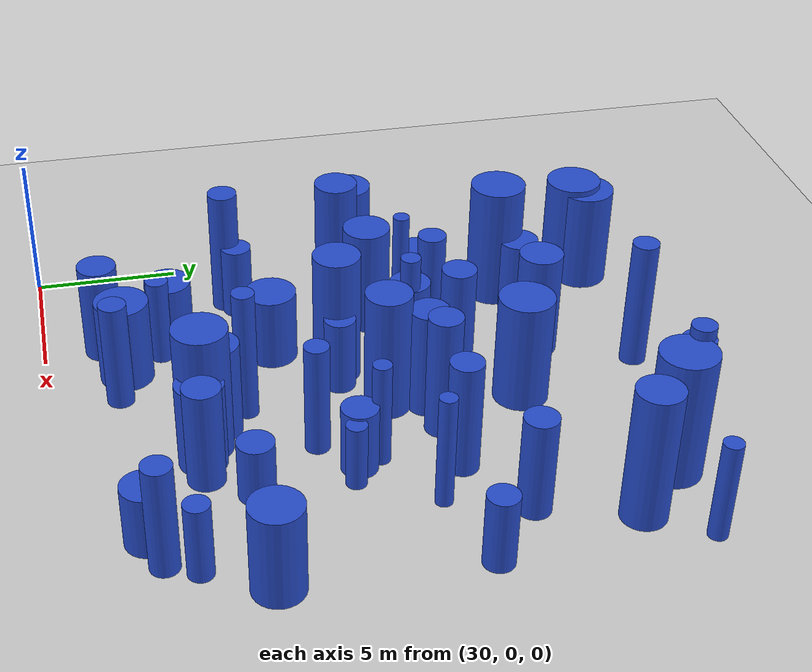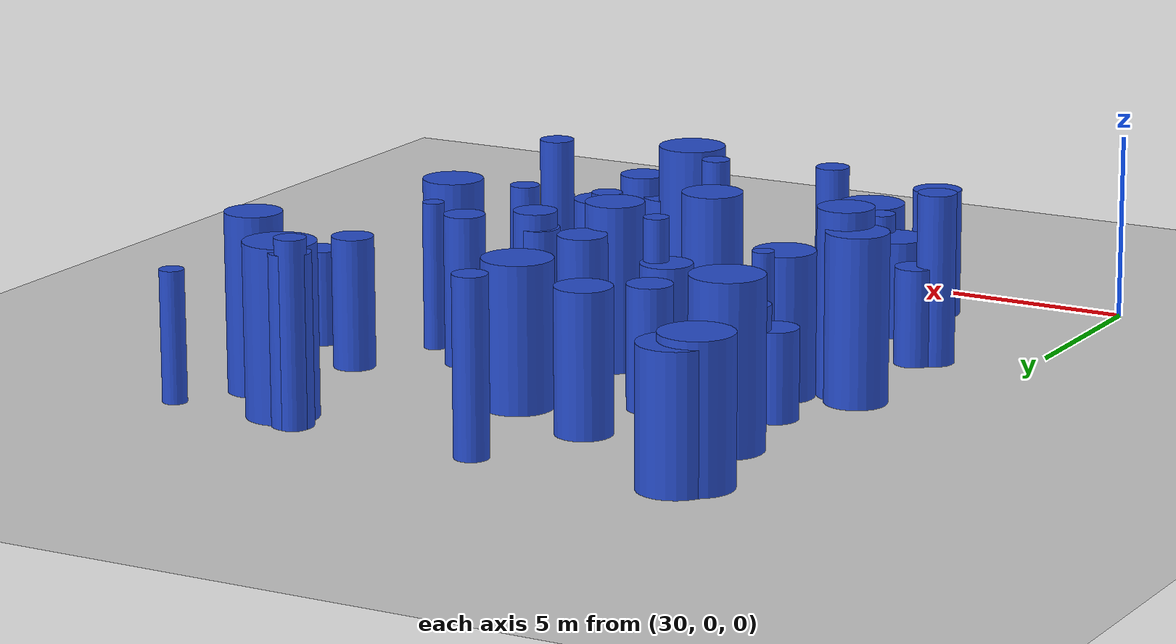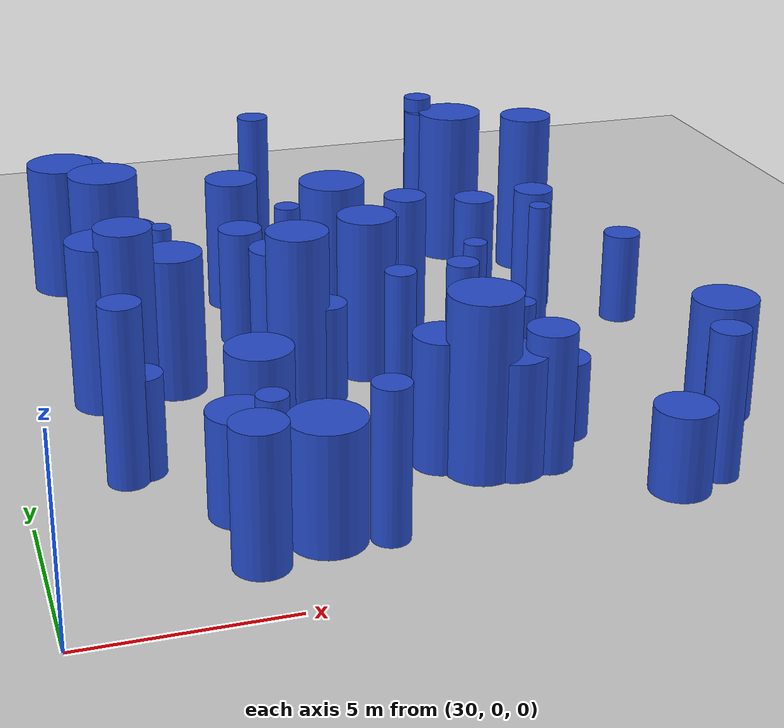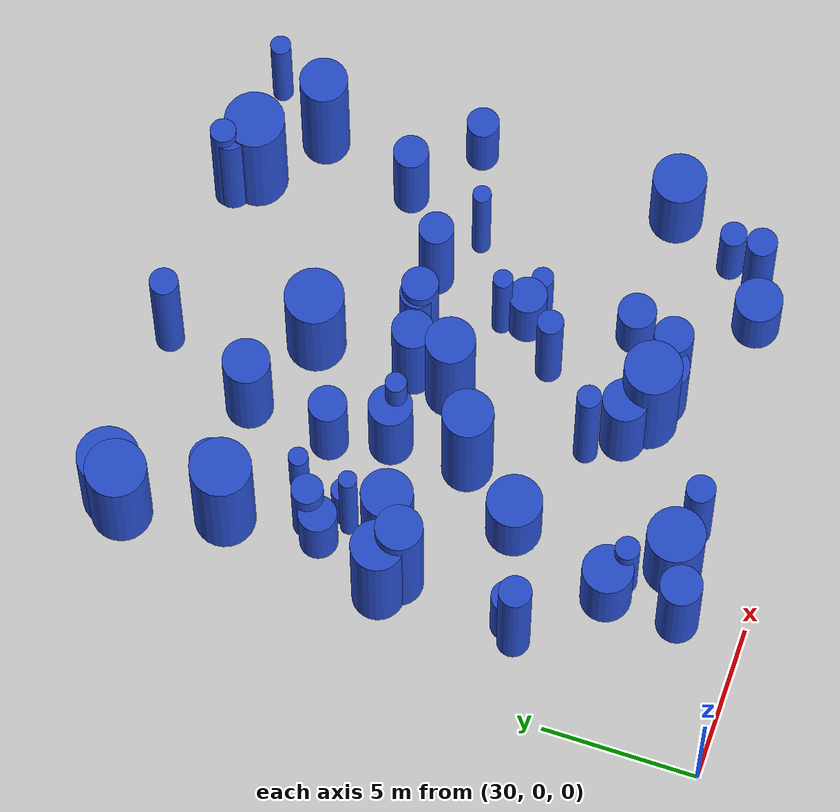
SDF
<sdf version="1.6">
 <world name="default">
  <model name="ground_plane">
   <static>1</static>
   <link name="link">
    <collision name="collision">
     <geometry><plane><normal>0 0 1</normal><size>100 100</size></plane></geometry>
     <surface><friction><ode><mu>100</mu><mu2>50</mu2></ode></friction></surface>
    </collision>
    <visual name="visual">
     <cast_shadows>0</cast_shadows>
     <geometry><plane><normal>0 0 1</normal><size>100 100</size></plane></geometry>
     <material>
      <script><uri>file://media/materials/scripts/gazebo.material</uri><name>Gazebo/Grey</name></script>
     </material>
    </visual>
   </link>
  </model>
  <model name="6">
   <static>0</static>
   <link name="link">
    <inertial>
     <mass>2</mass>
     <inertia><ixx>1.67554</ixx><ixy>0</ixy><ixz>0</ixz><iyy>1.67554</iyy><iyz>0</iyz><izz>0.257363</izz></inertia>
    </inertial>
    <collision name="collision">
     <geometry><cylinder><length>3.04649</length><radius>0.50731</radius></cylinder></geometry>
     <surface><contact><collide_without_contact>1</collide_without_contact></contact></surface>
    </collision>
    <visual name="visual">
     <geometry><cylinder><length>3.04649</length><radius>0.50731</radius></cylinder></geometry>
     <material>
      <script><uri>file://media/materials/scripts/gazebo.material</uri><name>Gazebo/Blue</name></script>
     </material>
    </visual>
    <gravity>0</gravity>
   </link>
   <pose>34.1541 13.9376 1.52325 0 -0 0</pose>
  </model>
  <model name="44">
   <static>0</static>
   <link name="link">
    <inertial>
     <mass>2</mass>
     <inertia><ixx>3.63122</ixx><ixy>0</ixy><ixz>0</ixz><iyy>3.63122</iyy><iyz>0</iyz><izz>0.614122</izz></inertia>
    </inertial>
    <collision name="collision">
     <geometry><cylinder><length>4.46598</length><radius>0.783659</radius></cylinder></geometry>
     <surface><contact><collide_without_contact>1</collide_without_contact></contact></surface>
    </collision>
    <visual name="visual">
     <geometry><cylinder><length>4.46598</length><radius>0.783659</radius></cylinder></geometry>
     <material>
      <script><uri>file://media/materials/scripts/gazebo.material</uri><name>Gazebo/Blue</name></script>
     </material>
    </visual>
    <gravity>0</gravity>
   </link>
   <pose>39.6417 11.1136 2.23299 0 -0 0</pose>
  </model>
  <model name="46">
   <static>0</static>
   <link name="link">
    <inertial>
     <mass>2</mass>
     <inertia>
      <ixx>0.904884</ixx>
      <ixy>0</ixy>
      <ixz>0</ixz>
      <iyy>0.904884</iyy>
      <iyz>0</iyz>
      <izz>0.374443</izz>
     </inertia>
    </inertial>
    <collision name="collision">
     <geometry><cylinder><length>2.07508</length><radius>0.611918</radius></cylinder></geometry>
     <surface><contact><collide_without_contact>1</collide_without_contact></contact></surface>
    </collision>
    <visual name="visual">
     <geometry><cylinder><length>2.07508</length><radius>0.611918</radius></cylinder></geometry>
     <material>
      <script><uri>file://media/materials/scripts/gazebo.material</uri><name>Gazebo/Blue</name></script>
     </material>
    </visual>
    <gravity>0</gravity>
   </link>
   <pose>43.3206 6.1671 1.03754 0 -0 0</pose>
  </model>
  <model name="89">
   <static>0</static>
   <link name="link">
    <inertial>
     <mass>2</mass>
     <inertia><ixx>1.27675</ixx><ixy>0</ixy><ixz>0</ixz><iyy>1.27675</iyy><iyz>0</iyz><izz>0.177285</izz></inertia>
    </inertial>
    <collision name="collision">
     <geometry><cylinder><length>2.66996</length><radius>0.421052</radius></cylinder></geometry>
     <surface><contact><collide_without_contact>1</collide_without_contact></contact></surface>
    </collision>
    <visual name="visual">
     <geometry><cylinder><length>2.66996</length><radius>0.421052</radius></cylinder></geometry>
     <material>
      <script><uri>file://media/materials/scripts/gazebo.material</uri><name>Gazebo/Blue</name></script>
     </material>
    </visual>
    <gravity>0</gravity>
   </link>
   <pose>46.5006 4.01887 1.33498 0 -0 0</pose>
  </model>
  <model name="102">
   <static>0</static>
   <link name="link">
    <inertial>
     <mass>2</mass>
     <inertia><ixx>3.00871</ixx><ixy>0</ixy><ixz>0</ixz><iyy>3.00871</iyy><iyz>0</iyz><izz>0.884047</izz></inertia>
    </inertial>
    <collision name="collision">
     <geometry><cylinder><length>3.9243</length><radius>0.940238</radius></cylinder></geometry>
     <surface><contact><collide_without_contact>1</collide_without_contact></contact></surface>
    </collision>
    <visual name="visual">
     <geometry><cylinder><length>3.9243</length><radius>0.940238</radius></cylinder></geometry>
     <material>
      <script><uri>file://media/materials/scripts/gazebo.material</uri><name>Gazebo/Blue</name></script>
     </material>
    </visual>
    <gravity>0</gravity>
   </link>
   <pose>39.9459 15.6386 1.96215 0 -0 0</pose>
  </model>
  <model name="111">
   <static>0</static>
   <link name="link">
    <inertial>
     <mass>2</mass>
     <inertia><ixx>2.81372</ixx><ixy>0</ixy><ixz>0</ixz><iyy>2.81372</iyy><iyz>0</iyz><izz>0.674403</izz></inertia>
    </inertial>
    <collision name="collision">
     <geometry><cylinder><length>3.85475</length><radius>0.821221</radius></cylinder></geometry>
     <surface><contact><collide_without_contact>1</collide_without_contact></contact></surface>
    </collision>
    <visual name="visual">
     <geometry><cylinder><length>3.85475</length><radius>0.821221</radius></cylinder></geometry>
     <material>
      <script><uri>file://media/materials/scripts/gazebo.material</uri><name>Gazebo/Blue</name></script>
     </material>
    </visual>
    <gravity>0</gravity>
   </link>
   <pose>34.4897 11.469 1.92738 0 -0 0</pose>
  </model>
  <model name="121">
   <static>0</static>
   <link name="link">
    <inertial>
     <mass>2</mass>
     <inertia><ixx>2.96479</ixx><ixy>0</ixy><ixz>0</ixz><iyy>2.96479</iyy><iyz>0</iyz><izz>0.93667</izz></inertia>
    </inertial>
    <collision name="collision">
     <geometry><cylinder><length>3.87023</length><radius>0.967817</radius></cylinder></geometry>
     <surface><contact><collide_without_contact>1</collide_without_contact></contact></surface>
    </collision>
    <visual name="visual">
     <geometry><cylinder><length>3.87023</length><radius>0.967817</radius></cylinder></geometry>
     <material>
      <script><uri>file://media/materials/scripts/gazebo.material</uri><name>Gazebo/Blue</name></script>
     </material>
    </visual>
    <gravity>0</gravity>
   </link>
   <pose>32.6949 19.6013 1.93512 0 -0 0</pose>
  </model>
  <model name="123">
   <static>0</static>
   <link name="link">
    <inertial>
     <mass>2</mass>
     <inertia><ixx>3.52291</ixx><ixy>0</ixy><ixz>0</ixz><iyy>3.52291</iyy><iyz>0</iyz><izz>0.302522</izz></inertia>
    </inertial>
    <collision name="collision">
     <geometry><cylinder><length>4.49777</length><radius>0.55002</radius></cylinder></geometry>
     <surface><contact><collide_without_contact>1</collide_without_contact></contact></surface>
    </collision>
    <visual name="visual">
     <geometry><cylinder><length>4.49777</length><radius>0.55002</radius></cylinder></geometry>
     <material>
      <script><uri>file://media/materials/scripts/gazebo.material</uri><name>Gazebo/Blue</name></script>
     </material>
    </visual>
    <gravity>0</gravity>
   </link>
   <pose>44.066 19.802 2.24888 0 -0 0</pose>
  </model>
  <model name="136">
   <static>0</static>
   <link name="link">
    <inertial>
     <mass>2</mass>
     <inertia><ixx>1.13934</ixx><ixy>0</ixy><ixz>0</ixz><iyy>1.13934</iyy><iyz>0</iyz><izz>0.372136</izz></inertia>
    </inertial>
    <collision name="collision">
     <geometry><cylinder><length>2.39158</length><radius>0.610029</radius></cylinder></geometry>
     <surface><contact><collide_without_contact>1</collide_without_contact></contact></surface>
    </collision>
    <visual name="visual">
     <geometry><cylinder><length>2.39158</length><radius>0.610029</radius></cylinder></geometry>
     <material>
      <script><uri>file://media/materials/scripts/gazebo.material</uri><name>Gazebo/Blue</name></script>
     </material>
    </visual>
    <gravity>0</gravity>
   </link>
   <pose>33.7146 13.4707 1.19579 0 -0 0</pose>
  </model>
  <model name="142">
   <static>0</static>
   <link name="link">
    <inertial>
     <mass>2</mass>
     <inertia><ixx>3.72978</ixx><ixy>0</ixy><ixz>0</ixz><iyy>3.72978</iyy><iyz>0</iyz><izz>0.206879</izz></inertia>
    </inertial>
    <collision name="collision">
     <geometry><cylinder><length>4.66455</length><radius>0.454839</radius></cylinder></geometry>
     <surface><contact><collide_without_contact>1</collide_without_contact></contact></surface>
    </collision>
    <visual name="visual">
     <geometry><cylinder><length>4.66455</length><radius>0.454839</radius></cylinder></geometry>
     <material>
      <script><uri>file://media/materials/scripts/gazebo.material</uri><name>Gazebo/Blue</name></script>
     </material>
    </visual>
    <gravity>0</gravity>
   </link>
   <pose>38.6761 20.082 2.33228 0 -0 0</pose>
  </model>
  <model name="147">
   <static>0</static>
   <link name="link">
    <inertial>
     <mass>2</mass>
     <inertia><ixx>2.71197</ixx><ixy>0</ixy><ixz>0</ixz><iyy>2.71197</iyy><iyz>0</iyz><izz>0.566044</izz></inertia>
    </inertial>
    <collision name="collision">
     <geometry><cylinder><length>3.81755</length><radius>0.752359</radius></cylinder></geometry>
     <surface><contact><collide_without_contact>1</collide_without_contact></contact></surface>
    </collision>
    <visual name="visual">
     <geometry><cylinder><length>3.81755</length><radius>0.752359</radius></cylinder></geometry>
     <material>
      <script><uri>file://media/materials/scripts/gazebo.material</uri><name>Gazebo/Blue</name></script>
     </material>
    </visual>
    <gravity>0</gravity>
   </link>
   <pose>37.2852 16.9555 1.90878 0 -0 0</pose>
  </model>
  <model name="150">
   <static>0</static>
   <link name="link">
    <inertial>
     <mass>2</mass>
     <inertia><ixx>1.24083</ixx><ixy>0</ixy><ixz>0</ixz><iyy>1.24083</iyy><iyz>0</iyz><izz>0.266175</izz></inertia>
    </inertial>
    <collision name="collision">
     <geometry><cylinder><length>2.57807</length><radius>0.515922</radius></cylinder></geometry>
     <surface><contact><collide_without_contact>1</collide_without_contact></contact></surface>
    </collision>
    <visual name="visual">
     <geometry><cylinder><length>2.57807</length><radius>0.515922</radius></cylinder></geometry>
     <material>
      <script><uri>file://media/materials/scripts/gazebo.material</uri><name>Gazebo/Blue</name></script>
     </material>
    </visual>
    <gravity>0</gravity>
   </link>
   <pose>47.7472 12.6653 1.28904 0 -0 0</pose>
  </model>
  <model name="152">
   <static>0</static>
   <link name="link">
    <inertial>
     <mass>2</mass>
     <inertia><ixx>2.66705</ixx><ixy>0</ixy><ixz>0</ixz><iyy>2.66705</iyy><iyz>0</iyz><izz>0.437548</izz></inertia>
    </inertial>
    <collision name="collision">
     <geometry><cylinder><length>3.83271</length><radius>0.661474</radius></cylinder></geometry>
     <surface><contact><collide_without_contact>1</collide_without_contact></contact></surface>
    </collision>
    <visual name="visual">
     <geometry><cylinder><length>3.83271</length><radius>0.661474</radius></cylinder></geometry>
     <material>
      <script><uri>file://media/materials/scripts/gazebo.material</uri><name>Gazebo/Blue</name></script>
     </material>
    </visual>
    <gravity>0</gravity>
   </link>
   <pose>39.8846 12.4135 1.91635 0 -0 0</pose>
  </model>
  <model name="153">
   <static>0</static>
   <link name="link">
    <inertial>
     <mass>2</mass>
     <inertia><ixx>2.11623</ixx><ixy>0</ixy><ixz>0</ixz><iyy>2.11623</iyy><iyz>0</iyz><izz>0.485566</izz></inertia>
    </inertial>
    <collision name="collision">
     <geometry><cylinder><length>3.35272</length><radius>0.696826</radius></cylinder></geometry>
     <surface><contact><collide_without_contact>1</collide_without_contact></contact></surface>
    </collision>
    <visual name="visual">
     <geometry><cylinder><length>3.35272</length><radius>0.696826</radius></cylinder></geometry>
     <material>
      <script><uri>file://media/materials/scripts/gazebo.material</uri><name>Gazebo/Blue</name></script>
     </material>
    </visual>
    <gravity>0</gravity>
   </link>
   <pose>37.4483 12.3398 1.67636 0 -0 0</pose>
  </model>
  <model name="166">
   <static>0</static>
   <link name="link">
    <inertial>
     <mass>2</mass>
     <inertia>
      <ixx>0.802403</ixx>
      <ixy>0</ixy>
      <ixz>0</ixz>
      <iyy>0.802403</iyy>
      <iyz>0</iyz>
      <izz>0.153345</izz>
     </inertia>
    </inertial>
    <collision name="collision">
     <geometry><cylinder><length>2.08672</length><radius>0.391593</radius></cylinder></geometry>
     <surface><contact><collide_without_contact>1</collide_without_contact></contact></surface>
    </collision>
    <visual name="visual">
     <geometry><cylinder><length>2.08672</length><radius>0.391593</radius></cylinder></geometry>
     <material>
      <script><uri>file://media/materials/scripts/gazebo.material</uri><name>Gazebo/Blue</name></script>
     </material>
    </visual>
    <gravity>0</gravity>
   </link>
   <pose>34.8114 12.9983 1.04336 0 -0 0</pose>
  </model>
  <model name="171">
   <static>0</static>
   <link name="link">
    <inertial>
     <mass>2</mass>
     <inertia><ixx>3.80906</ixx><ixy>0</ixy><ixz>0</ixz><iyy>3.80906</iyy><iyz>0</iyz><izz>0.938182</izz></inertia>
    </inertial>
    <collision name="collision">
     <geometry><cylinder><length>4.47658</length><radius>0.968598</radius></cylinder></geometry>
     <surface><contact><collide_without_contact>1</collide_without_contact></contact></surface>
    </collision>
    <visual name="visual">
     <geometry><cylinder><length>4.47658</length><radius>0.968598</radius></cylinder></geometry>
     <material>
      <script><uri>file://media/materials/scripts/gazebo.material</uri><name>Gazebo/Blue</name></script>
     </material>
    </visual>
    <gravity>0</gravity>
   </link>
   <pose>33.5153 16.4732 2.23829 0 -0 0</pose>
  </model>
  <model name="177">
   <static>0</static>
   <link name="link">
    <inertial>
     <mass>2</mass>
     <inertia><ixx>1.29724</ixx><ixy>0</ixy><ixz>0</ixz><iyy>1.29724</iyy><iyz>0</iyz><izz>0.287893</izz></inertia>
    </inertial>
    <collision name="collision">
     <geometry><cylinder><length>2.63054</length><radius>0.536557</radius></cylinder></geometry>
     <surface><contact><collide_without_contact>1</collide_without_contact></contact></surface>
    </collision>
    <visual name="visual">
     <geometry><cylinder><length>2.63054</length><radius>0.536557</radius></cylinder></geometry>
     <material>
      <script><uri>file://media/materials/scripts/gazebo.material</uri><name>Gazebo/Blue</name></script>
     </material>
    </visual>
    <gravity>0</gravity>
   </link>
   <pose>32.8916 7.05394 1.31527 0 -0 0</pose>
  </model>
  <model name="180">
   <static>0</static>
   <link name="link">
    <inertial>
     <mass>2</mass>
     <inertia><ixx>3.44735</ixx><ixy>0</ixy><ixz>0</ixz><iyy>3.44735</iyy><iyz>0</iyz><izz>0.113907</izz></inertia>
    </inertial>
    <collision name="collision">
     <geometry><cylinder><length>4.51025</length><radius>0.337501</radius></cylinder></geometry>
     <surface><contact><collide_without_contact>1</collide_without_contact></contact></surface>
    </collision>
    <visual name="visual">
     <geometry><cylinder><length>4.51025</length><radius>0.337501</radius></cylinder></geometry>
     <material>
      <script><uri>file://media/materials/scripts/gazebo.material</uri><name>Gazebo/Blue</name></script>
     </material>
    </visual>
    <gravity>0</gravity>
   </link>
   <pose>37.7872 12.2615 2.25513 0 -0 0</pose>
  </model>
  <model name="184">
   <static>0</static>
   <link name="link">
    <inertial>
     <mass>2</mass>
     <inertia><ixx>2.8983</ixx><ixy>0</ixy><ixz>0</ixz><iyy>2.8983</iyy><iyz>0</iyz><izz>0.305029</izz></inertia>
    </inertial>
    <collision name="collision">
     <geometry><cylinder><length>4.05891</length><radius>0.552294</radius></cylinder></geometry>
     <surface><contact><collide_without_contact>1</collide_without_contact></contact></surface>
    </collision>
    <visual name="visual">
     <geometry><cylinder><length>4.05891</length><radius>0.552294</radius></cylinder></geometry>
     <material>
      <script><uri>file://media/materials/scripts/gazebo.material</uri><name>Gazebo/Blue</name></script>
     </material>
    </visual>
    <gravity>0</gravity>
   </link>
   <pose>43.2383 12.7435 2.02945 0 -0 0</pose>
  </model>
  <model name="191">
   <static>0</static>
   <link name="link">
    <inertial>
     <mass>2</mass>
     <inertia><ixx>4.3988</ixx><ixy>0</ixy><ixz>0</ixz><iyy>4.3988</iyy><iyz>0</iyz><izz>0.551901</izz></inertia>
    </inertial>
    <collision name="collision">
     <geometry><cylinder><length>4.97364</length><radius>0.7429</radius></cylinder></geometry>
     <surface><contact><collide_without_contact>1</collide_without_contact></contact></surface>
    </collision>
    <visual name="visual">
     <geometry><cylinder><length>4.97364</length><radius>0.7429</radius></cylinder></geometry>
     <material>
      <script><uri>file://media/materials/scripts/gazebo.material</uri><name>Gazebo/Blue</name></script>
     </material>
    </visual>
    <gravity>0</gravity>
   </link>
   <pose>33.1657 10.6401 2.48682 0 -0 0</pose>
  </model>
  <model name="194">
   <static>0</static>
   <link name="link">
    <inertial>
     <mass>2</mass>
     <inertia><ixx>1.99536</ixx><ixy>0</ixy><ixz>0</ixz><iyy>1.99536</iyy><iyz>0</iyz><izz>0.368304</izz></inertia>
    </inertial>
    <collision name="collision">
     <geometry><cylinder><length>3.29655</length><radius>0.60688</radius></cylinder></geometry>
     <surface><contact><collide_without_contact>1</collide_without_contact></contact></surface>
    </collision>
    <visual name="visual">
     <geometry><cylinder><length>3.29655</length><radius>0.60688</radius></cylinder></geometry>
     <material>
      <script><uri>file://media/materials/scripts/gazebo.material</uri><name>Gazebo/Blue</name></script>
     </material>
    </visual>
    <gravity>0</gravity>
   </link>
   <pose>36.9169 14.1988 1.64828 0 -0 0</pose>
  </model>
  <model name="197">
   <static>0</static>
   <link name="link">
    <inertial>
     <mass>2</mass>
     <inertia><ixx>2.7156</ixx><ixy>0</ixy><ixz>0</ixz><iyy>2.7156</iyy><iyz>0</iyz><izz>0.960869</izz></inertia>
    </inertial>
    <collision name="collision">
     <geometry><cylinder><length>3.6621</length><radius>0.980239</radius></cylinder></geometry>
     <surface><contact><collide_without_contact>1</collide_without_contact></contact></surface>
    </collision>
    <visual name="visual">
     <geometry><cylinder><length>3.6621</length><radius>0.980239</radius></cylinder></geometry>
     <material>
      <script><uri>file://media/materials/scripts/gazebo.material</uri><name>Gazebo/Blue</name></script>
     </material>
    </visual>
    <gravity>0</gravity>
   </link>
   <pose>33.0641 19.9853 1.83105 0 -0 0</pose>
  </model>
  <model name="215">
   <static>0</static>
   <link name="link">
    <inertial>
     <mass>2</mass>
     <inertia><ixx>2.74024</ixx><ixy>0</ixy><ixz>0</ixz><iyy>2.74024</iyy><iyz>0</iyz><izz>0.308937</izz></inertia>
    </inertial>
    <collision name="collision">
     <geometry><cylinder><length>3.93886</length><radius>0.555821</radius></cylinder></geometry>
     <surface><contact><collide_without_contact>1</collide_without_contact></contact></surface>
    </collision>
    <visual name="visual">
     <geometry><cylinder><length>3.93886</length><radius>0.555821</radius></cylinder></geometry>
     <material>
      <script><uri>file://media/materials/scripts/gazebo.material</uri><name>Gazebo/Blue</name></script>
     </material>
    </visual>
    <gravity>0</gravity>
   </link>
   <pose>41.0527 12.6409 1.96943 0 -0 0</pose>
  </model>
  <model name="235">
   <static>0</static>
   <link name="link">
    <inertial>
     <mass>2</mass>
     <inertia><ixx>3.77912</ixx><ixy>0</ixy><ixz>0</ixz><iyy>3.77912</iyy><iyz>0</iyz><izz>0.145848</izz></inertia>
    </inertial>
    <collision name="collision">
     <geometry><cylinder><length>4.71563</length><radius>0.3819</radius></cylinder></geometry>
     <surface><contact><collide_without_contact>1</collide_without_contact></contact></surface>
    </collision>
    <visual name="visual">
     <geometry><cylinder><length>4.71563</length><radius>0.3819</radius></cylinder></geometry>
     <material>
      <script><uri>file://media/materials/scripts/gazebo.material</uri><name>Gazebo/Blue</name></script>
     </material>
    </visual>
    <gravity>0</gravity>
   </link>
   <pose>39.1013 6.48615 2.35781 0 -0 0</pose>
  </model>
  <model name="236">
   <static>0</static>
   <link name="link">
    <inertial>
     <mass>2</mass>
     <inertia>
      <ixx>2.86049</ixx>
      <ixy>0</ixy>
      <ixz>0</ixz>
      <iyy>2.86049</iyy>
      <iyz>0</iyz>
      <izz>0.0831779</izz>
     </inertia>
    </inertial>
    <collision name="collision">
     <geometry><cylinder><length>4.11259</length><radius>0.288406</radius></cylinder></geometry>
     <surface><contact><collide_without_contact>1</collide_without_contact></contact></surface>
    </collision>
    <visual name="visual">
     <geometry><cylinder><length>4.11259</length><radius>0.288406</radius></cylinder></geometry>
     <material>
      <script><uri>file://media/materials/scripts/gazebo.material</uri><name>Gazebo/Blue</name></script>
     </material>
    </visual>
    <gravity>0</gravity>
   </link>
   <pose>34.4621 12.7183 2.0563 0 -0 0</pose>
  </model>
  <model name="253">
   <static>0</static>
   <link name="link">
    <inertial>
     <mass>2</mass>
     <inertia><ixx>3.93288</ixx><ixy>0</ixy><ixz>0</ixz><iyy>3.93288</iyy><iyz>0</iyz><izz>0.90199</izz></inertia>
    </inertial>
    <collision name="collision">
     <geometry><cylinder><length>4.5707</length><radius>0.949731</radius></cylinder></geometry>
     <surface><contact><collide_without_contact>1</collide_without_contact></contact></surface>
    </collision>
    <visual name="visual">
     <geometry><cylinder><length>4.5707</length><radius>0.949731</radius></cylinder></geometry>
     <material>
      <script><uri>file://media/materials/scripts/gazebo.material</uri><name>Gazebo/Blue</name></script>
     </material>
    </visual>
    <gravity>0</gravity>
   </link>
   <pose>44.7552 19.207 2.28535 0 -0 0</pose>
  </model>
  <model name="256">
   <static>0</static>
   <link name="link">
    <inertial>
     <mass>2</mass>
     <inertia><ixx>2.10368</ixx><ixy>0</ixy><ixz>0</ixz><iyy>2.10368</iyy><iyz>0</iyz><izz>0.106031</izz></inertia>
    </inertial>
    <collision name="collision">
     <geometry><cylinder><length>3.5077</length><radius>0.325623</radius></cylinder></geometry>
     <surface><contact><collide_without_contact>1</collide_without_contact></contact></surface>
    </collision>
    <visual name="visual">
     <geometry><cylinder><length>3.5077</length><radius>0.325623</radius></cylinder></geometry>
     <material>
      <script><uri>file://media/materials/scripts/gazebo.material</uri><name>Gazebo/Blue</name></script>
     </material>
    </visual>
    <gravity>0</gravity>
   </link>
   <pose>47.8961 19.4395 1.75385 0 -0 0</pose>
  </model>
  <model name="259">
   <static>0</static>
   <link name="link">
    <inertial>
     <mass>2</mass>
     <inertia><ixx>3.96416</ixx><ixy>0</ixy><ixz>0</ixz><iyy>3.96416</iyy><iyz>0</iyz><izz>0.822619</izz></inertia>
    </inertial>
    <collision name="collision">
     <geometry><cylinder><length>4.61705</length><radius>0.906983</radius></cylinder></geometry>
     <surface><contact><collide_without_contact>1</collide_without_contact></contact></surface>
    </collision>
    <visual name="visual">
     <geometry><cylinder><length>4.61705</length><radius>0.906983</radius></cylinder></geometry>
     <material>
      <script><uri>file://media/materials/scripts/gazebo.material</uri><name>Gazebo/Blue</name></script>
     </material>
    </visual>
    <gravity>0</gravity>
   </link>
   <pose>40.6644 4.91271 2.30852 0 -0 0</pose>
  </model>
  <model name="261">
   <static>0</static>
   <link name="link">
    <inertial>
     <mass>2</mass>
     <inertia><ixx>1.90318</ixx><ixy>0</ixy><ixz>0</ixz><iyy>1.90318</iyy><iyz>0</iyz><izz>0.637956</izz></inertia>
    </inertial>
    <collision name="collision">
     <geometry><cylinder><length>3.08306</length><radius>0.798721</radius></cylinder></geometry>
     <surface><contact><collide_without_contact>1</collide_without_contact></contact></surface>
    </collision>
    <visual name="visual">
     <geometry><cylinder><length>3.08306</length><radius>0.798721</radius></cylinder></geometry>
     <material>
      <script><uri>file://media/materials/scripts/gazebo.material</uri><name>Gazebo/Blue</name></script>
     </material>
    </visual>
    <gravity>0</gravity>
   </link>
   <pose>41.405 4.72773 1.54153 0 -0 0</pose>
  </model>
  <model name="263">
   <static>0</static>
   <link name="link">
    <inertial>
     <mass>2</mass>
     <inertia><ixx>1.3769</ixx><ixy>0</ixy><ixz>0</ixz><iyy>1.3769</iyy><iyz>0</iyz><izz>0.498679</izz></inertia>
    </inertial>
    <collision name="collision">
     <geometry><cylinder><length>2.60103</length><radius>0.706172</radius></cylinder></geometry>
     <surface><contact><collide_without_contact>1</collide_without_contact></contact></surface>
    </collision>
    <visual name="visual">
     <geometry><cylinder><length>2.60103</length><radius>0.706172</radius></cylinder></geometry>
     <material>
      <script><uri>file://media/materials/scripts/gazebo.material</uri><name>Gazebo/Blue</name></script>
     </material>
    </visual>
    <gravity>0</gravity>
   </link>
   <pose>34.3339 17.1024 1.30051 0 -0 0</pose>
  </model>
  <model name="276">
   <static>0</static>
   <link name="link">
    <inertial>
     <mass>2</mass>
     <inertia>
      <ixx>0.941637</ixx>
      <ixy>0</ixy>
      <ixz>0</ixz>
      <iyy>0.941637</iyy>
      <iyz>0</iyz>
      <izz>0.121126</izz>
     </inertia>
    </inertial>
    <collision name="collision">
     <geometry><cylinder><length>2.29923</length><radius>0.348032</radius></cylinder></geometry>
     <surface><contact><collide_without_contact>1</collide_without_contact></contact></surface>
    </collision>
    <visual name="visual">
     <geometry><cylinder><length>2.29923</length><radius>0.348032</radius></cylinder></geometry>
     <material>
      <script><uri>file://media/materials/scripts/gazebo.material</uri><name>Gazebo/Blue</name></script>
     </material>
    </visual>
    <gravity>0</gravity>
   </link>
   <pose>43.3975 9.28931 1.14961 0 -0 0</pose>
  </model>
  <model name="289">
   <static>0</static>
   <link name="link">
    <inertial>
     <mass>2</mass>
     <inertia><ixx>3.34449</ixx><ixy>0</ixy><ixz>0</ixz><iyy>3.34449</iyy><iyz>0</iyz><izz>0.335247</izz></inertia>
    </inertial>
    <collision name="collision">
     <geometry><cylinder><length>4.36592</length><radius>0.579005</radius></cylinder></geometry>
     <surface><contact><collide_without_contact>1</collide_without_contact></contact></surface>
    </collision>
    <visual name="visual">
     <geometry><cylinder><length>4.36592</length><radius>0.579005</radius></cylinder></geometry>
     <material>
      <script><uri>file://media/materials/scripts/gazebo.material</uri><name>Gazebo/Blue</name></script>
     </material>
    </visual>
    <gravity>0</gravity>
   </link>
   <pose>41.1795 12.5993 2.18296 0 -0 0</pose>
  </model>
  <model name="293">
   <static>0</static>
   <link name="link">
    <inertial>
     <mass>2</mass>
     <inertia>
      <ixx>2.70857</ixx>
      <ixy>0</ixy>
      <ixz>0</ixz>
      <iyy>2.70857</iyy>
      <iyz>0</iyz>
      <izz>0.0855814</izz>
     </inertia>
    </inertial>
    <collision name="collision">
     <geometry><cylinder><length>3.99933</length><radius>0.292543</radius></cylinder></geometry>
     <surface><contact><collide_without_contact>1</collide_without_contact></contact></surface>
    </collision>
    <visual name="visual">
     <geometry><cylinder><length>3.99933</length><radius>0.292543</radius></cylinder></geometry>
     <material>
      <script><uri>file://media/materials/scripts/gazebo.material</uri><name>Gazebo/Blue</name></script>
     </material>
    </visual>
    <gravity>0</gravity>
   </link>
   <pose>44.7925 11.7557 1.99967 0 -0 0</pose>
  </model>
  <model name="301">
   <static>0</static>
   <link name="link">
    <inertial>
     <mass>2</mass>
     <inertia><ixx>2.5743</ixx><ixy>0</ixy><ixz>0</ixz><iyy>2.5743</iyy><iyz>0</iyz><izz>0.232116</izz></inertia>
    </inertial>
    <collision name="collision">
     <geometry><cylinder><length>3.8405</length><radius>0.481784</radius></cylinder></geometry>
     <surface><contact><collide_without_contact>1</collide_without_contact></contact></surface>
    </collision>
    <visual name="visual">
     <geometry><cylinder><length>3.8405</length><radius>0.481784</radius></cylinder></geometry>
     <material>
      <script><uri>file://media/materials/scripts/gazebo.material</uri><name>Gazebo/Blue</name></script>
     </material>
    </visual>
    <gravity>0</gravity>
   </link>
   <pose>46.0183 3.01262 1.92025 0 -0 0</pose>
  </model>
  <model name="303">
   <static>0</static>
   <link name="link">
    <inertial>
     <mass>2</mass>
     <inertia><ixx>4.02054</ixx><ixy>0</ixy><ixz>0</ixz><iyy>4.02054</iyy><iyz>0</iyz><izz>0.651375</izz></inertia>
    </inertial>
    <collision name="collision">
     <geometry><cylinder><length>4.70841</length><radius>0.807078</radius></cylinder></geometry>
     <surface><contact><collide_without_contact>1</collide_without_contact></contact></surface>
    </collision>
    <visual name="visual">
     <geometry><cylinder><length>4.70841</length><radius>0.807078</radius></cylinder></geometry>
     <material>
      <script><uri>file://media/materials/scripts/gazebo.material</uri><name>Gazebo/Blue</name></script>
     </material>
    </visual>
    <gravity>0</gravity>
   </link>
   <pose>37.437 9.83505 2.35421 0 -0 0</pose>
  </model>
  <model name="318">
   <static>0</static>
   <link name="link">
    <inertial>
     <mass>2</mass>
     <inertia><ixx>1.0758</ixx><ixy>0</ixy><ixz>0</ixz><iyy>1.0758</iyy><iyz>0</iyz><izz>0.568319</izz></inertia>
    </inertial>
    <collision name="collision">
     <geometry><cylinder><length>2.17942</length><radius>0.753869</radius></cylinder></geometry>
     <surface><contact><collide_without_contact>1</collide_without_contact></contact></surface>
    </collision>
    <visual name="visual">
     <geometry><cylinder><length>2.17942</length><radius>0.753869</radius></cylinder></geometry>
     <material>
      <script><uri>file://media/materials/scripts/gazebo.material</uri><name>Gazebo/Blue</name></script>
     </material>
    </visual>
    <gravity>0</gravity>
   </link>
   <pose>44.8213 2.65543 1.08971 0 -0 0</pose>
  </model>
  <model name="333">
   <static>0</static>
   <link name="link">
    <inertial>
     <mass>2</mass>
     <inertia><ixx>1.34998</ixx><ixy>0</ixy><ixz>0</ixz><iyy>1.34998</iyy><iyz>0</iyz><izz>0.288613</izz></inertia>
    </inertial>
    <collision name="collision">
     <geometry><cylinder><length>2.68962</length><radius>0.537228</radius></cylinder></geometry>
     <surface><contact><collide_without_contact>1</collide_without_contact></contact></surface>
    </collision>
    <visual name="visual">
     <geometry><cylinder><length>2.68962</length><radius>0.537228</radius></cylinder></geometry>
     <material>
      <script><uri>file://media/materials/scripts/gazebo.material</uri><name>Gazebo/Blue</name></script>
     </material>
    </visual>
    <gravity>0</gravity>
   </link>
   <pose>38.174 9.7947 1.34481 0 -0 0</pose>
  </model>
  <model name="356">
   <static>0</static>
   <link name="link">
    <inertial>
     <mass>2</mass>
     <inertia><ixx>1.49663</ixx><ixy>0</ixy><ixz>0</ixz><iyy>1.49663</iyy><iyz>0</iyz><izz>0.767004</izz></inertia>
    </inertial>
    <collision name="collision">
     <geometry><cylinder><length>2.58433</length><radius>0.875788</radius></cylinder></geometry>
     <surface><contact><collide_without_contact>1</collide_without_contact></contact></surface>
    </collision>
    <visual name="visual">
     <geometry><cylinder><length>2.58433</length><radius>0.875788</radius></cylinder></geometry>
     <material>
      <script><uri>file://media/materials/scripts/gazebo.material</uri><name>Gazebo/Blue</name></script>
     </material>
    </visual>
    <gravity>0</gravity>
   </link>
   <pose>35.9291 7.82679 1.29216 0 -0 0</pose>
  </model>
  <model name="357">
   <static>0</static>
   <link name="link">
    <inertial>
     <mass>2</mass>
     <inertia><ixx>2.21227</ixx><ixy>0</ixy><ixz>0</ixz><iyy>2.21227</iyy><iyz>0</iyz><izz>0.516927</izz></inertia>
    </inertial>
    <collision name="collision">
     <geometry><cylinder><length>3.42386</length><radius>0.718976</radius></cylinder></geometry>
     <surface><contact><collide_without_contact>1</collide_without_contact></contact></surface>
    </collision>
    <visual name="visual">
     <geometry><cylinder><length>3.42386</length><radius>0.718976</radius></cylinder></geometry>
     <material>
      <script><uri>file://media/materials/scripts/gazebo.material</uri><name>Gazebo/Blue</name></script>
     </material>
    </visual>
    <gravity>0</gravity>
   </link>
   <pose>39.836 5.50938 1.71193 0 -0 0</pose>
  </model>
  <model name="385">
   <static>0</static>
   <link name="link">
    <inertial>
     <mass>2</mass>
     <inertia><ixx>3.7214</ixx><ixy>0</ixy><ixz>0</ixz><iyy>3.7214</iyy><iyz>0</iyz><izz>0.690577</izz></inertia>
    </inertial>
    <collision name="collision">
     <geometry><cylinder><length>4.50074</length><radius>0.83101</radius></cylinder></geometry>
     <surface><contact><collide_without_contact>1</collide_without_contact></contact></surface>
    </collision>
    <visual name="visual">
     <geometry><cylinder><length>4.50074</length><radius>0.83101</radius></cylinder></geometry>
     <material>
      <script><uri>file://media/materials/scripts/gazebo.material</uri><name>Gazebo/Blue</name></script>
     </material>
    </visual>
    <gravity>0</gravity>
   </link>
   <pose>32.5852 11.1486 2.25037 0 -0 0</pose>
  </model>
  <model name="390">
   <static>0</static>
   <link name="link">
    <inertial>
     <mass>2</mass>
     <inertia><ixx>2.69496</ixx><ixy>0</ixy><ixz>0</ixz><iyy>2.69496</iyy><iyz>0</iyz><izz>0.171897</izz></inertia>
    </inertial>
    <collision name="collision">
     <geometry><cylinder><length>3.95652</length><radius>0.414605</radius></cylinder></geometry>
     <surface><contact><collide_without_contact>1</collide_without_contact></contact></surface>
    </collision>
    <visual name="visual">
     <geometry><cylinder><length>3.95652</length><radius>0.414605</radius></cylinder></geometry>
     <material>
      <script><uri>file://media/materials/scripts/gazebo.material</uri><name>Gazebo/Blue</name></script>
     </material>
    </visual>
    <gravity>0</gravity>
   </link>
   <pose>41.372 8.43063 1.97826 0 -0 0</pose>
  </model>
  <model name="401">
   <static>0</static>
   <link name="link">
    <inertial>
     <mass>2</mass>
     <inertia><ixx>2.58117</ixx><ixy>0</ixy><ixz>0</ixz><iyy>2.58117</iyy><iyz>0</iyz><izz>0.21424</izz></inertia>
    </inertial>
    <collision name="collision">
     <geometry><cylinder><length>3.85283</length><radius>0.462861</radius></cylinder></geometry>
     <surface><contact><collide_without_contact>1</collide_without_contact></contact></surface>
    </collision>
    <visual name="visual">
     <geometry><cylinder><length>3.85283</length><radius>0.462861</radius></cylinder></geometry>
     <material>
      <script><uri>file://media/materials/scripts/gazebo.material</uri><name>Gazebo/Blue</name></script>
     </material>
    </visual>
    <gravity>0</gravity>
   </link>
   <pose>37.6129 2.41657 1.92641 0 -0 0</pose>
  </model>
  <model name="402">
   <static>0</static>
   <link name="link">
    <inertial>
     <mass>2</mass>
     <inertia><ixx>1.48949</ixx><ixy>0</ixy><ixz>0</ixz><iyy>1.48949</iyy><iyz>0</iyz><izz>0.645846</izz></inertia>
    </inertial>
    <collision name="collision">
     <geometry><cylinder><length>2.64564</length><radius>0.803645</radius></cylinder></geometry>
     <surface><contact><collide_without_contact>1</collide_without_contact></contact></surface>
    </collision>
    <visual name="visual">
     <geometry><cylinder><length>2.64564</length><radius>0.803645</radius></cylinder></geometry>
     <material>
      <script><uri>file://media/materials/scripts/gazebo.material</uri><name>Gazebo/Blue</name></script>
     </material>
    </visual>
    <gravity>0</gravity>
   </link>
   <pose>34.6831 4.43078 1.32282 0 -0 0</pose>
  </model>
  <model name="422">
   <static>0</static>
   <link name="link">
    <inertial>
     <mass>2</mass>
     <inertia><ixx>2.04981</ixx><ixy>0</ixy><ixz>0</ixz><iyy>2.04981</iyy><iyz>0</iyz><izz>0.726781</izz></inertia>
    </inertial>
    <collision name="collision">
     <geometry><cylinder><length>3.18097</length><radius>0.852515</radius></cylinder></geometry>
     <surface><contact><collide_without_contact>1</collide_without_contact></contact></surface>
    </collision>
    <visual name="visual">
     <geometry><cylinder><length>3.18097</length><radius>0.852515</radius></cylinder></geometry>
     <material>
      <script><uri>file://media/materials/scripts/gazebo.material</uri><name>Gazebo/Blue</name></script>
     </material>
    </visual>
    <gravity>0</gravity>
   </link>
   <pose>47.5751 6.13872 1.59048 0 -0 0</pose>
  </model>
  <model name="423">
   <static>0</static>
   <link name="link">
    <inertial>
     <mass>2</mass>
     <inertia>
      <ixx>2.34147</ixx>
      <ixy>0</ixy>
      <ixz>0</ixz>
      <iyy>2.34147</iyy>
      <iyz>0</iyz>
      <izz>0.0982831</izz>
     </inertia>
    </inertial>
    <collision name="collision">
     <geometry><cylinder><length>3.70863</length><radius>0.313501</radius></cylinder></geometry>
     <surface><contact><collide_without_contact>1</collide_without_contact></contact></surface>
    </collision>
    <visual name="visual">
     <geometry><cylinder><length>3.70863</length><radius>0.313501</radius></cylinder></geometry>
     <material>
      <script><uri>file://media/materials/scripts/gazebo.material</uri><name>Gazebo/Blue</name></script>
     </material>
    </visual>
    <gravity>0</gravity>
   </link>
   <pose>42.395 10.2965 1.85432 0 -0 0</pose>
  </model>
  <model name="429">
   <static>0</static>
   <link name="link">
    <inertial>
     <mass>2</mass>
     <inertia><ixx>1.97538</ixx><ixy>0</ixy><ixz>0</ixz><iyy>1.97538</iyy><iyz>0</iyz><izz>0.843716</izz></inertia>
    </inertial>
    <collision name="collision">
     <geometry><cylinder><length>3.05305</length><radius>0.91854</radius></cylinder></geometry>
     <surface><contact><collide_without_contact>1</collide_without_contact></contact></surface>
    </collision>
    <visual name="visual">
     <geometry><cylinder><length>3.05305</length><radius>0.91854</radius></cylinder></geometry>
     <material>
      <script><uri>file://media/materials/scripts/gazebo.material</uri><name>Gazebo/Blue</name></script>
     </material>
    </visual>
    <gravity>0</gravity>
   </link>
   <pose>36.2549 2.74621 1.52653 0 -0 0</pose>
  </model>
  <model name="455">
   <static>0</static>
   <link name="link">
    <inertial>
     <mass>2</mass>
     <inertia><ixx>4.11002</ixx><ixy>0</ixy><ixz>0</ixz><iyy>4.11002</iyy><iyz>0</iyz><izz>0.168583</izz></inertia>
    </inertial>
    <collision name="collision">
     <geometry><cylinder><length>4.91471</length><radius>0.410589</radius></cylinder></geometry>
     <surface><contact><collide_without_contact>1</collide_without_contact></contact></surface>
    </collision>
    <visual name="visual">
     <geometry><cylinder><length>4.91471</length><radius>0.410589</radius></cylinder></geometry>
     <material>
      <script><uri>file://media/materials/scripts/gazebo.material</uri><name>Gazebo/Blue</name></script>
     </material>
    </visual>
    <gravity>0</gravity>
   </link>
   <pose>43.9492 19.9507 2.45735 0 -0 0</pose>
  </model>
  <model name="457">
   <static>0</static>
   <link name="link">
    <inertial>
     <mass>2</mass>
     <inertia><ixx>2.25468</ixx><ixy>0</ixy><ixz>0</ixz><iyy>2.25468</iyy><iyz>0</iyz><izz>0.445988</izz></inertia>
    </inertial>
    <collision name="collision">
     <geometry><cylinder><length>3.49143</length><radius>0.667823</radius></cylinder></geometry>
     <surface><contact><collide_without_contact>1</collide_without_contact></contact></surface>
    </collision>
    <visual name="visual">
     <geometry><cylinder><length>3.49143</length><radius>0.667823</radius></cylinder></geometry>
     <material>
      <script><uri>file://media/materials/scripts/gazebo.material</uri><name>Gazebo/Blue</name></script>
     </material>
    </visual>
    <gravity>0</gravity>
   </link>
   <pose>34.5791 2.08868 1.74572 0 -0 0</pose>
  </model>
  <model name="463">
   <static>0</static>
   <link name="link">
    <inertial>
     <mass>2</mass>
     <inertia>
      <ixx>1.58244</ixx>
      <ixy>0</ixy>
      <ixz>0</ixz>
      <iyy>1.58244</iyy>
      <iyz>0</iyz>
      <izz>0.0759068</izz>
     </inertia>
    </inertial>
    <collision name="collision">
     <geometry><cylinder><length>3.04416</length><radius>0.275512</radius></cylinder></geometry>
     <surface><contact><collide_without_contact>1</collide_without_contact></contact></surface>
    </collision>
    <visual name="visual">
     <geometry><cylinder><length>3.04416</length><radius>0.275512</radius></cylinder></geometry>
     <material>
      <script><uri>file://media/materials/scripts/gazebo.material</uri><name>Gazebo/Blue</name></script>
     </material>
    </visual>
    <gravity>0</gravity>
   </link>
   <pose>44.2717 18.76 1.52208 0 -0 0</pose>
  </model>
  <model name="470">
   <static>0</static>
   <link name="link">
    <inertial>
     <mass>2</mass>
     <inertia><ixx>1.70838</ixx><ixy>0</ixy><ixz>0</ixz><iyy>1.70838</iyy><iyz>0</iyz><izz>0.150869</izz></inertia>
    </inertial>
    <collision name="collision">
     <geometry><cylinder><length>3.13013</length><radius>0.388418</radius></cylinder></geometry>
     <surface><contact><collide_without_contact>1</collide_without_contact></contact></surface>
    </collision>
    <visual name="visual">
     <geometry><cylinder><length>3.13013</length><radius>0.388418</radius></cylinder></geometry>
     <material>
      <script><uri>file://media/materials/scripts/gazebo.material</uri><name>Gazebo/Blue</name></script>
     </material>
    </visual>
    <gravity>0</gravity>
   </link>
   <pose>35.339 4.02475 1.56506 0 -0 0</pose>
  </model>
  <model name="481">
   <static>0</static>
   <link name="link">
    <inertial>
     <mass>2</mass>
     <inertia><ixx>2.34888</ixx><ixy>0</ixy><ixz>0</ixz><iyy>2.34888</iyy><iyz>0</iyz><izz>0.387782</izz></inertia>
    </inertial>
    <collision name="collision">
     <geometry><cylinder><length>3.59582</length><radius>0.622722</radius></cylinder></geometry>
     <surface><contact><collide_without_contact>1</collide_without_contact></contact></surface>
    </collision>
    <visual name="visual">
     <geometry><cylinder><length>3.59582</length><radius>0.622722</radius></cylinder></geometry>
     <material>
      <script><uri>file://media/materials/scripts/gazebo.material</uri><name>Gazebo/Blue</name></script>
     </material>
    </visual>
    <gravity>0</gravity>
   </link>
   <pose>42.3025 4.71489 1.79791 0 -0 0</pose>
  </model>
  <model name="489">
   <static>0</static>
   <link name="link">
    <inertial>
     <mass>2</mass>
     <inertia><ixx>4.07992</ixx><ixy>0</ixy><ixz>0</ixz><iyy>4.07992</iyy><iyz>0</iyz><izz>0.577385</izz></inertia>
    </inertial>
    <collision name="collision">
     <geometry><cylinder><length>4.76942</length><radius>0.759858</radius></cylinder></geometry>
     <surface><contact><collide_without_contact>1</collide_without_contact></contact></surface>
    </collision>
    <visual name="visual">
     <geometry><cylinder><length>4.76942</length><radius>0.759858</radius></cylinder></geometry>
     <material>
      <script><uri>file://media/materials/scripts/gazebo.material</uri><name>Gazebo/Blue</name></script>
     </material>
    </visual>
    <gravity>0</gravity>
   </link>
   <pose>46.6258 17.5561 2.38471 0 -0 0</pose>
  </model>
  <model name="492">
   <static>0</static>
   <link name="link">
    <inertial>
     <mass>2</mass>
     <inertia><ixx>2.24168</ixx><ixy>0</ixy><ixz>0</ixz><iyy>2.24168</iyy><iyz>0</iyz><izz>0.314971</izz></inertia>
    </inertial>
    <collision name="collision">
     <geometry><cylinder><length>3.53626</length><radius>0.561222</radius></cylinder></geometry>
     <surface><contact><collide_without_contact>1</collide_without_contact></contact></surface>
    </collision>
    <visual name="visual">
     <geometry><cylinder><length>3.53626</length><radius>0.561222</radius></cylinder></geometry>
     <material>
      <script><uri>file://media/materials/scripts/gazebo.material</uri><name>Gazebo/Blue</name></script>
     </material>
    </visual>
    <gravity>0</gravity>
   </link>
   <pose>45.6707 14.3747 1.76813 0 -0 0</pose>
  </model>
  <model name="494">
   <static>0</static>
   <link name="link">
    <inertial>
     <mass>2</mass>
     <inertia><ixx>1.13143</ixx><ixy>0</ixy><ixz>0</ixz><iyy>1.13143</iyy><iyz>0</iyz><izz>0.375323</izz></inertia>
    </inertial>
    <collision name="collision">
     <geometry><cylinder><length>2.37963</length><radius>0.612636</radius></cylinder></geometry>
     <surface><contact><collide_without_contact>1</collide_without_contact></contact></surface>
    </collision>
    <visual name="visual">
     <geometry><cylinder><length>2.37963</length><radius>0.612636</radius></cylinder></geometry>
     <material>
      <script><uri>file://media/materials/scripts/gazebo.material</uri><name>Gazebo/Blue</name></script>
     </material>
    </visual>
    <gravity>0</gravity>
   </link>
   <pose>42.6503 9.54443 1.18981 0 -0 0</pose>
  </model>
  <model name="497">
   <static>0</static>
   <link name="link">
    <inertial>
     <mass>2</mass>
     <inertia><ixx>3.6657</ixx><ixy>0</ixy><ixz>0</ixz><iyy>3.6657</iyy><iyz>0</iyz><izz>0.266688</izz></inertia>
    </inertial>
    <collision name="collision">
     <geometry><cylinder><length>4.60371</length><radius>0.516418</radius></cylinder></geometry>
     <surface><contact><collide_without_contact>1</collide_without_contact></contact></surface>
    </collision>
    <visual name="visual">
     <geometry><cylinder><length>4.60371</length><radius>0.516418</radius></cylinder></geometry>
     <material>
      <script><uri>file://media/materials/scripts/gazebo.material</uri><name>Gazebo/Blue</name></script>
     </material>
    </visual>
    <gravity>0</gravity>
   </link>
   <pose>32.4377 6.71463 2.30185 0 -0 0</pose>
  </model>
  <model name="498">
   <static>0</static>
   <link name="link">
    <inertial>
     <mass>2</mass>
     <inertia>
      <ixx>0.798468</ixx>
      <ixy>0</ixy>
      <ixz>0</ixz>
      <iyy>0.798468</iyy>
      <iyz>0</iyz>
      <izz>0.0991976</izz>
     </inertia>
    </inertial>
    <collision name="collision">
     <geometry><cylinder><length>2.11972</length><radius>0.314956</radius></cylinder></geometry>
     <surface><contact><collide_without_contact>1</collide_without_contact></contact></surface>
    </collision>
    <visual name="visual">
     <geometry><cylinder><length>2.11972</length><radius>0.314956</radius></cylinder></geometry>
     <material>
      <script><uri>file://media/materials/scripts/gazebo.material</uri><name>Gazebo/Blue</name></script>
     </material>
    </visual>
    <gravity>0</gravity>
   </link>
   <pose>35.4065 14.6696 1.05986 0 -0 0</pose>
  </model>
 </world>
</sdf>
